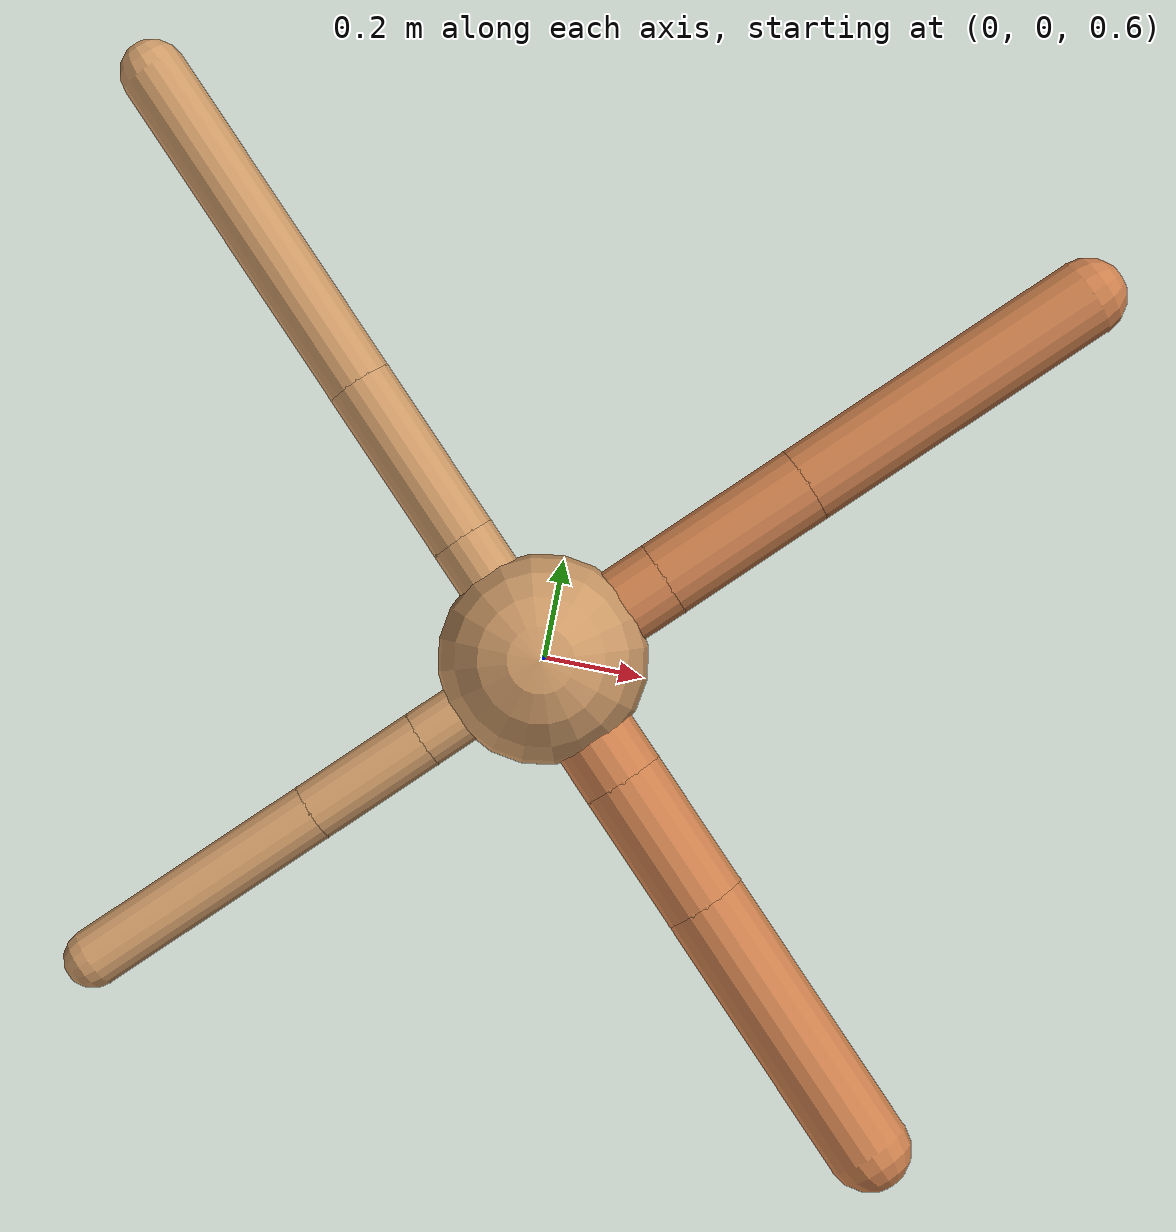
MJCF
<?xml version="1.0" ?>
<mujoco model="ant">

	<compiler angle="degree" coordinate="local" inertiafromgeom="true"/>

	<option integrator="RK4" timestep="0.01"/>

	<custom>

		<numeric data="0.0 0.0 0.55 1.0 0.0 0.0 0.0 0.0 1.0 0.0 -1.0 0.0 -1.0 0.0 1.0" name="init_qpos"/>

	</custom>

	<default>

		<joint armature="1" damping="1" limited="true"/>

		<geom conaffinity="0" condim="3" density="5.0" friction="1.5 0.1 0.1" margin="0.01" rgba="0.8 0.6 0.4 1"/>

	</default>

	<worldbody>

		<body name="torso" pos="0 0 0.75">

			<geom name="torso_geom" pos="0 0 0" size="0.20772501248886913" type="sphere"/>

			<!--joint armature="0" damping="0" limited="false" margin="0.01" name="root" pos="0 0 0" type="free"/-->

			<body name="front_left_leg" pos="0 0 0">

				<geom fromto="0 0 0 0.2 0.2 0" name="aux_1_geom" size="0.07918948548550386" type="capsule" rgba=".8 .5 .3 1"/>

				<body name="aux_1" pos="0.2 0.2 0">

					<joint axis="0 0 1" name="hip_1" pos="0.0 0.0 0.0" range="-40 40" type="hinge"/>

					<geom fromto="0 0 0 0.23461334306343984 0.23461334306343984 0" name="left_leg_geom" size="0.07918948548550386" type="capsule" rgba=".8 .5 .3 1"/>

					<body pos="0.23461334306343984 0.23461334306343984 0" name="front_left_foot">

						<joint axis="-1 1 0" name="ankle_1" pos="0.0 0.0 0.0" range="30 100" type="hinge"/>

						<geom fromto="0 0 0 0.4692266861268797 0.4692266861268797 0" name="left_ankle_geom" size="0.07918948548550386" type="capsule" rgba=".8 .5 .3 1"/>

					</body>

				</body>

			</body>

			<body name="front_right_leg" pos="0 0 0">

				<geom fromto="0 0 0 -0.2 0.2 0" name="aux_2_geom" size="0.0667164809056666" type="capsule"/>

				<body name="aux_2" pos="-0.2 0.2 0">

					<joint axis="0 0 1" name="hip_2" pos="0.0 0.0 0.0" range="-40 40" type="hinge"/>

					<geom fromto="0 0 0 -0.25800189204506596 0.25800189204506596 0" name="right_leg_geom" size="0.0667164809056666" type="capsule"/>

					<body pos="-0.25800189204506596 0.25800189204506596 0" name="front_right_foot">

						<joint axis="1 1 0" name="ankle_2" pos="0.0 0.0 0.0" range="-100 -30" type="hinge"/>

						<geom fromto="0 0 0 -0.5160037840901319 0.5160037840901319 0" name="right_ankle_geom" size="0.0667164809056666" type="capsule"/>

					</body>

				</body>

			</body>

			<body name="left_back_leg" pos="0 0 0">

				<geom fromto="0 0 0 -0.2 -0.2 0" name="aux_3_geom" size="0.05948942283977389" type="capsule"/>

				<body name="aux_3" pos="-0.2 -0.2 0">

					<joint axis="0 0 1" name="hip_3" pos="0.0 0.0 0.0" range="-40 40" type="hinge"/>

					<geom fromto="0 0 0 -0.18214756328582293 -0.18214756328582293 0" name="back_leg_geom" size="0.05948942283977389" type="capsule"/>

					<body pos="-0.18214756328582293 -0.18214756328582293 0" name="left_back_foot">

						<joint axis="-1 1 0" name="ankle_3" pos="0.0 0.0 0.0" range="-100 -30" type="hinge"/>

						<geom fromto="0 0 0 -0.36429512657164587 -0.36429512657164587 0" name="third_ankle_geom" size="0.05948942283977389" type="capsule"/>

					</body>

				</body>

			</body>

			<body name="right_back_leg" pos="0 0 0">

				<geom fromto="0 0 0 0.2 -0.2 0" name="aux_4_geom" size="0.08445385936810045" type="capsule" rgba=".8 .5 .3 1"/>

				<body name="aux_4" pos="0.2 -0.2 0">

					<joint axis="0 0 1" name="hip_4" pos="0.0 0.0 0.0" range="-40 40" type="hinge"/>

					<geom fromto="0 0 0 0.20482051261903594 -0.20482051261903594 0" name="rightback_leg_geom" size="0.08445385936810045" type="capsule" rgba=".8 .5 .3 1"/>

					<body pos="0.20482051261903594 -0.20482051261903594 0" name="right_back_foot">

						<joint axis="1 1 0" name="ankle_4" pos="0.0 0.0 0.0" range="30 100" type="hinge"/>

						<geom fromto="0 0 0 0.4096410252380719 -0.4096410252380719 0" name="fourth_ankle_geom" size="0.08445385936810045" type="capsule" rgba=".8 .5 .3 1"/>

					</body>

				</body>

			</body>

		</body>

	</worldbody>

	<actuator>

		<motor ctrllimited="true" ctrlrange="-1.0 1.0" joint="hip_4" gear="150"/>

		<motor ctrllimited="true" ctrlrange="-1.0 1.0" joint="ankle_4" gear="150"/>

		<motor ctrllimited="true" ctrlrange="-1.0 1.0" joint="hip_1" gear="150"/>

		<motor ctrllimited="true" ctrlrange="-1.0 1.0" joint="ankle_1" gear="150"/>

		<motor ctrllimited="true" ctrlrange="-1.0 1.0" joint="hip_2" gear="150"/>

		<motor ctrllimited="true" ctrlrange="-1.0 1.0" joint="ankle_2" gear="150"/>

		<motor ctrllimited="true" ctrlrange="-1.0 1.0" joint="hip_3" gear="150"/>

		<motor ctrllimited="true" ctrlrange="-1.0 1.0" joint="ankle_3" gear="150"/>

	</actuator>

</mujoco>
